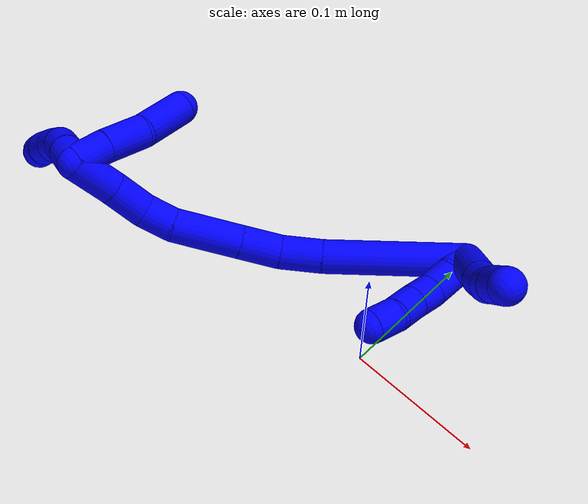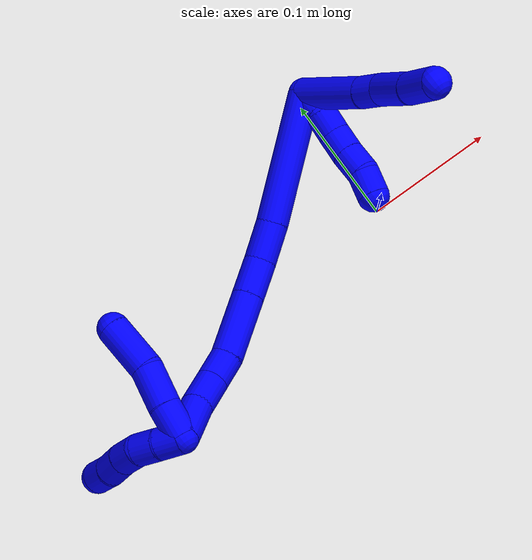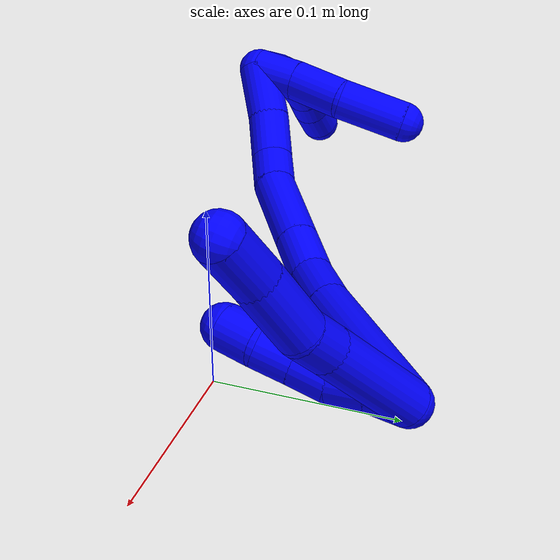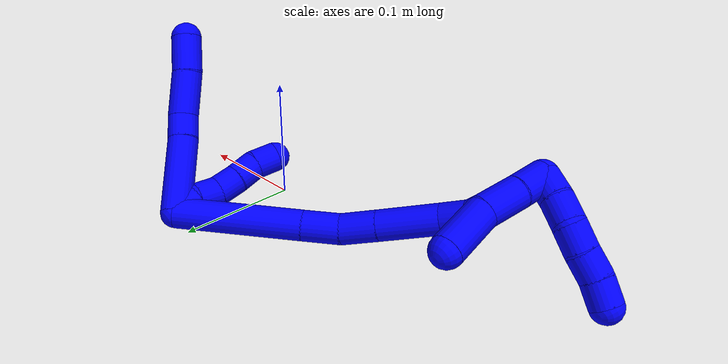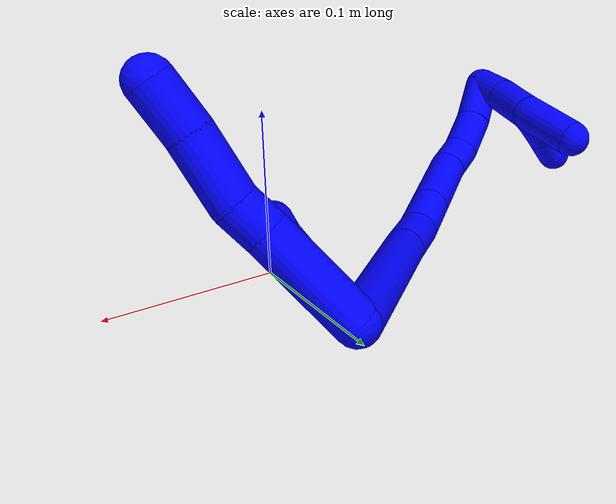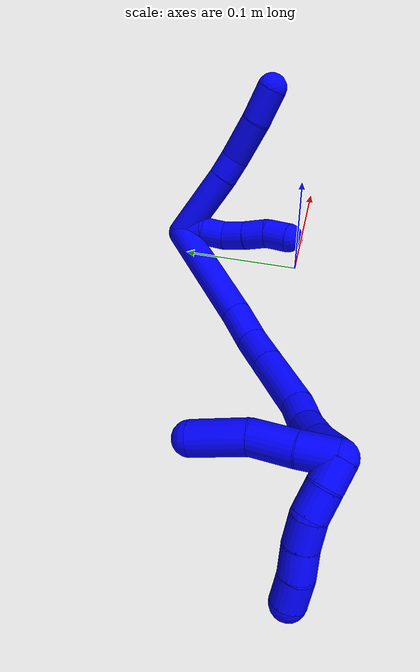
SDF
<sdf version="1.7">
 <world name="default">
  <model name="1">
   <static>0</static>
   <link name="1">
    <collision name="collision-cylinder-e_1_2_8">
     <pose>0.017224 -0.015923 -0.02046 2.48026 0.586411 1.44275</pose>
     <geometry><cylinder><radius>0.0125</radius><length>0.062251</length></cylinder></geometry>
     <surface>
      <friction><ode><mu>1.16</mu><mu2>1.16</mu2><slip1>0</slip1><slip2>0</slip2></ode></friction>
      <contact><ode><kp>1e+06</kp><kd>1</kd><max_vel>0</max_vel><min_depth>0.001</min_depth></ode></contact>
     </surface>
    </collision>
    <visual name="visual-cylinder-e_1_2_8">
     <pose>0.017224 -0.015923 -0.02046 2.48026 0.586411 1.44275</pose>
     <geometry><cylinder><radius>0.0125</radius><length>0.062251</length></cylinder></geometry>
     <material><ambient>0 0 1 1</ambient></material>
    </visual>
    <collision name="collision-cylinder-e_2_8_9">
     <pose>0.040623 -0.037073 -0.04688 2.42162 0.661681 1.47939</pose>
     <geometry><cylinder><radius>0.0125</radius><length>0.020097</length></cylinder></geometry>
     <surface>
      <friction><ode><mu>1.16</mu><mu2>1.16</mu2><slip1>0</slip1><slip2>0</slip2></ode></friction>
      <contact><ode><kp>1e+06</kp><kd>1</kd><max_vel>0</max_vel><min_depth>0.001</min_depth></ode></contact>
     </surface>
    </collision>
    <visual name="visual-cylinder-e_2_8_9">
     <pose>0.040623 -0.037073 -0.04688 2.42162 0.661681 1.47939</pose>
     <geometry><cylinder><radius>0.0125</radius><length>0.020097</length></cylinder></geometry>
     <material><ambient>0 0 1 1</ambient></material>
    </visual>
    <collision name="collision-cylinder-e_3_9_10">
     <pose>0.054578 -0.054988 -0.064205 2.30125 0.428535 0.906482</pose>
     <geometry><cylinder><radius>0.0125</radius><length>0.037453</length></cylinder></geometry>
     <surface>
      <friction><ode><mu>1.16</mu><mu2>1.16</mu2><slip1>0</slip1><slip2>0</slip2></ode></friction>
      <contact><ode><kp>1e+06</kp><kd>1</kd><max_vel>0</max_vel><min_depth>0.001</min_depth></ode></contact>
     </surface>
    </collision>
    <visual name="visual-cylinder-e_3_9_10">
     <pose>0.054578 -0.054988 -0.064205 2.30125 0.428535 0.906482</pose>
     <geometry><cylinder><radius>0.0125</radius><length>0.037453</length></cylinder></geometry>
     <material><ambient>0 0 1 1</ambient></material>
    </visual>
    <collision name="collision-cylinder-e_4_10_6">
     <pose>0.070152 -0.077727 -0.083708 2.25139 0.542261 1.05524</pose>
     <geometry><cylinder><radius>0.0125</radius><length>0.030199</length></cylinder></geometry>
     <surface>
      <friction><ode><mu>1.16</mu><mu2>1.16</mu2><slip1>0</slip1><slip2>0</slip2></ode></friction>
      <contact><ode><kp>1e+06</kp><kd>1</kd><max_vel>0</max_vel><min_depth>0.001</min_depth></ode></contact>
     </surface>
    </collision>
    <visual name="visual-cylinder-e_4_10_6">
     <pose>0.070152 -0.077727 -0.083708 2.25139 0.542261 1.05524</pose>
     <geometry><cylinder><radius>0.0125</radius><length>0.030199</length></cylinder></geometry>
     <material><ambient>0 0 1 1</ambient></material>
    </visual>
    <collision name="collision-cylinder-e_1_2_11">
     <pose>0.000467 1.9e-05 -0.009989 -3.13973 0.046678 -3.06166</pose>
     <geometry><cylinder><radius>0.0125</radius><length>0.02</length></cylinder></geometry>
     <surface>
      <friction><ode><mu>1.16</mu><mu2>1.16</mu2><slip1>0</slip1><slip2>0</slip2></ode></friction>
      <contact><ode><kp>1e+06</kp><kd>1</kd><max_vel>0</max_vel><min_depth>0.001</min_depth></ode></contact>
     </surface>
    </collision>
    <visual name="visual-cylinder-e_1_2_11">
     <pose>0.000467 1.9e-05 -0.009989 -3.13973 0.046678 -3.06166</pose>
     <geometry><cylinder><radius>0.0125</radius><length>0.02</length></cylinder></geometry>
     <material><ambient>0 0 1 1</ambient></material>
    </visual>
    <collision name="collision-cylinder-e_2_11_12">
     <pose>0.00012 0.002776 -0.029561 -2.8632 -0.081403 0.565758</pose>
     <geometry><cylinder><radius>0.0125</radius><length>0.02</length></cylinder></geometry>
     <surface>
      <friction><ode><mu>1.16</mu><mu2>1.16</mu2><slip1>0</slip1><slip2>0</slip2></ode></friction>
      <contact><ode><kp>1e+06</kp><kd>1</kd><max_vel>0</max_vel><min_depth>0.001</min_depth></ode></contact>
     </surface>
    </collision>
    <visual name="visual-cylinder-e_2_11_12">
     <pose>0.00012 0.002776 -0.029561 -2.8632 -0.081403 0.565758</pose>
     <geometry><cylinder><radius>0.0125</radius><length>0.02</length></cylinder></geometry>
     <material><ambient>0 0 1 1</ambient></material>
    </visual>
    <collision name="collision-cylinder-e_3_12_13">
     <pose>-0.001257 0.00519 -0.049123 3.109 -0.056398 -2.09361</pose>
     <geometry><cylinder><radius>0.0125</radius><length>0.02</length></cylinder></geometry>
     <surface>
      <friction><ode><mu>1.16</mu><mu2>1.16</mu2><slip1>0</slip1><slip2>0</slip2></ode></friction>
      <contact><ode><kp>1e+06</kp><kd>1</kd><max_vel>0</max_vel><min_depth>0.001</min_depth></ode></contact>
     </surface>
    </collision>
    <visual name="visual-cylinder-e_3_12_13">
     <pose>-0.001257 0.00519 -0.049123 3.109 -0.056398 -2.09361</pose>
     <geometry><cylinder><radius>0.0125</radius><length>0.02</length></cylinder></geometry>
     <material><ambient>0 0 1 1</ambient></material>
    </visual>
    <collision name="collision-cylinder-e_4_13_14">
     <pose>-0.00156 0.004227 -0.069078 3.07776 0.026017 0.77389</pose>
     <geometry><cylinder><radius>0.0125</radius><length>0.02</length></cylinder></geometry>
     <surface>
      <friction><ode><mu>1.16</mu><mu2>1.16</mu2><slip1>0</slip1><slip2>0</slip2></ode></friction>
      <contact><ode><kp>1e+06</kp><kd>1</kd><max_vel>0</max_vel><min_depth>0.001</min_depth></ode></contact>
     </surface>
    </collision>
    <visual name="visual-cylinder-e_4_13_14">
     <pose>-0.00156 0.004227 -0.069078 3.07776 0.026017 0.77389</pose>
     <geometry><cylinder><radius>0.0125</radius><length>0.02</length></cylinder></geometry>
     <material><ambient>0 0 1 1</ambient></material>
    </visual>
    <collision name="collision-cylinder-e_5_14_5">
     <pose>-0.003602 0.004286 -0.088761 -3.06998 -0.232297 2.54582</pose>
     <geometry><cylinder><radius>0.0125</radius><length>0.02</length></cylinder></geometry>
     <surface>
      <friction><ode><mu>1.16</mu><mu2>1.16</mu2><slip1>0</slip1><slip2>0</slip2></ode></friction>
      <contact><ode><kp>1e+06</kp><kd>1</kd><max_vel>0</max_vel><min_depth>0.001</min_depth></ode></contact>
     </surface>
    </collision>
    <visual name="visual-cylinder-e_5_14_5">
     <pose>-0.003602 0.004286 -0.088761 -3.06998 -0.232297 2.54582</pose>
     <geometry><cylinder><radius>0.0125</radius><length>0.02</length></cylinder></geometry>
     <material><ambient>0 0 1 1</ambient></material>
    </visual>
    <collision name="collision-cylinder-e_1_2_15">
     <pose>-0.040001 0.006552 -0.031593 -2.9371 -0.892038 2.71884</pose>
     <geometry><cylinder><radius>0.0125</radius><length>0.102783</length></cylinder></geometry>
     <surface>
      <friction><ode><mu>1.16</mu><mu2>1.16</mu2><slip1>0</slip1><slip2>0</slip2></ode></friction>
      <contact><ode><kp>1e+06</kp><kd>1</kd><max_vel>0</max_vel><min_depth>0.001</min_depth></ode></contact>
     </surface>
    </collision>
    <visual name="visual-cylinder-e_1_2_15">
     <pose>-0.040001 0.006552 -0.031593 -2.9371 -0.892038 2.71884</pose>
     <geometry><cylinder><radius>0.0125</radius><length>0.102783</length></cylinder></geometry>
     <material><ambient>0 0 1 1</ambient></material>
    </visual>
    <collision name="collision-cylinder-e_2_15_16">
     <pose>-0.092533 0.014156 -0.072145 -3.02467 -0.946836 2.91408</pose>
     <geometry><cylinder><radius>0.0125</radius><length>0.030881</length></cylinder></geometry>
     <surface>
      <friction><ode><mu>1.16</mu><mu2>1.16</mu2><slip1>0</slip1><slip2>0</slip2></ode></friction>
      <contact><ode><kp>1e+06</kp><kd>1</kd><max_vel>0</max_vel><min_depth>0.001</min_depth></ode></contact>
     </surface>
    </collision>
    <visual name="visual-cylinder-e_2_15_16">
     <pose>-0.092533 0.014156 -0.072145 -3.02467 -0.946836 2.91408</pose>
     <geometry><cylinder><radius>0.0125</radius><length>0.030881</length></cylinder></geometry>
     <material><ambient>0 0 1 1</ambient></material>
    </visual>
    <collision name="collision-cylinder-e_3_16_17">
     <pose>-0.116734 0.012856 -0.090287 2.89082 -0.888638 -2.62393</pose>
     <geometry><cylinder><radius>0.0125</radius><length>0.03007</length></cylinder></geometry>
     <surface>
      <friction><ode><mu>1.16</mu><mu2>1.16</mu2><slip1>0</slip1><slip2>0</slip2></ode></friction>
      <contact><ode><kp>1e+06</kp><kd>1</kd><max_vel>0</max_vel><min_depth>0.001</min_depth></ode></contact>
     </surface>
    </collision>
    <visual name="visual-cylinder-e_3_16_17">
     <pose>-0.116734 0.012856 -0.090287 2.89082 -0.888638 -2.62393</pose>
     <geometry><cylinder><radius>0.0125</radius><length>0.03007</length></cylinder></geometry>
     <material><ambient>0 0 1 1</ambient></material>
    </visual>
    <collision name="collision-cylinder-e_4_17_18">
     <pose>-0.147884 0.006396 -0.114829 2.88023 -0.886242 -2.60128</pose>
     <geometry><cylinder><radius>0.0125</radius><length>0.050288</length></cylinder></geometry>
     <surface>
      <friction><ode><mu>1.16</mu><mu2>1.16</mu2><slip1>0</slip1><slip2>0</slip2></ode></friction>
      <contact><ode><kp>1e+06</kp><kd>1</kd><max_vel>0</max_vel><min_depth>0.001</min_depth></ode></contact>
     </surface>
    </collision>
    <visual name="visual-cylinder-e_4_17_18">
     <pose>-0.147884 0.006396 -0.114829 2.88023 -0.886242 -2.60128</pose>
     <geometry><cylinder><radius>0.0125</radius><length>0.050288</length></cylinder></geometry>
     <material><ambient>0 0 1 1</ambient></material>
    </visual>
    <collision name="collision-cylinder-e_5_18_19">
     <pose>-0.176978 -0.001322 -0.135533 2.54764 -0.979974 -2.09979</pose>
     <geometry><cylinder><radius>0.0125</radius><length>0.023155</length></cylinder></geometry>
     <surface>
      <friction><ode><mu>1.16</mu><mu2>1.16</mu2><slip1>0</slip1><slip2>0</slip2></ode></friction>
      <contact><ode><kp>1e+06</kp><kd>1</kd><max_vel>0</max_vel><min_depth>0.001</min_depth></ode></contact>
     </surface>
    </collision>
    <visual name="visual-cylinder-e_5_18_19">
     <pose>-0.176978 -0.001322 -0.135533 2.54764 -0.979974 -2.09979</pose>
     <geometry><cylinder><radius>0.0125</radius><length>0.023155</length></cylinder></geometry>
     <material><ambient>0 0 1 1</ambient></material>
    </visual>
    <collision name="collision-cylinder-e_6_19_20">
     <pose>-0.195944 -0.013294 -0.147816 2.26331 -0.710614 -1.33714</pose>
     <geometry><cylinder><radius>0.0125</radius><length>0.028672</length></cylinder></geometry>
     <surface>
      <friction><ode><mu>1.16</mu><mu2>1.16</mu2><slip1>0</slip1><slip2>0</slip2></ode></friction>
      <contact><ode><kp>1e+06</kp><kd>1</kd><max_vel>0</max_vel><min_depth>0.001</min_depth></ode></contact>
     </surface>
    </collision>
    <visual name="visual-cylinder-e_6_19_20">
     <pose>-0.195944 -0.013294 -0.147816 2.26331 -0.710614 -1.33714</pose>
     <geometry><cylinder><radius>0.0125</radius><length>0.028672</length></cylinder></geometry>
     <material><ambient>0 0 1 1</ambient></material>
    </visual>
    <collision name="collision-cylinder-e_7_20_1">
     <pose>-0.214786 -0.032113 -0.164354 2.31354 -0.589336 -1.20888</pose>
     <geometry><cylinder><radius>0.0125</radius><length>0.034151</length></cylinder></geometry>
     <surface>
      <friction><ode><mu>1.16</mu><mu2>1.16</mu2><slip1>0</slip1><slip2>0</slip2></ode></friction>
      <contact><ode><kp>1e+06</kp><kd>1</kd><max_vel>0</max_vel><min_depth>0.001</min_depth></ode></contact>
     </surface>
    </collision>
    <visual name="visual-cylinder-e_7_20_1">
     <pose>-0.214786 -0.032113 -0.164354 2.31354 -0.589336 -1.20888</pose>
     <geometry><cylinder><radius>0.0125</radius><length>0.034151</length></cylinder></geometry>
     <material><ambient>0 0 1 1</ambient></material>
    </visual>
    <collision name="collision-cylinder-e_1_1_21">
     <pose>-0.23303 -0.040109 -0.169793 -0.534054 -1.06624 0.320104</pose>
     <geometry><cylinder><radius>0.0125</radius><length>0.02</length></cylinder></geometry>
     <surface>
      <friction><ode><mu>1.16</mu><mu2>1.16</mu2><slip1>0</slip1><slip2>0</slip2></ode></friction>
      <contact><ode><kp>1e+06</kp><kd>1</kd><max_vel>0</max_vel><min_depth>0.001</min_depth></ode></contact>
     </surface>
    </collision>
    <visual name="visual-cylinder-e_1_1_21">
     <pose>-0.23303 -0.040109 -0.169793 -0.534054 -1.06624 0.320104</pose>
     <geometry><cylinder><radius>0.0125</radius><length>0.02</length></cylinder></geometry>
     <material><ambient>0 0 1 1</ambient></material>
    </visual>
    <collision name="collision-cylinder-e_2_21_22">
     <pose>-0.249985 -0.033951 -0.161263 -0.702306 -0.961472 0.377571</pose>
     <geometry><cylinder><radius>0.0125</radius><length>0.02</length></cylinder></geometry>
     <surface>
      <friction><ode><mu>1.16</mu><mu2>1.16</mu2><slip1>0</slip1><slip2>0</slip2></ode></friction>
      <contact><ode><kp>1e+06</kp><kd>1</kd><max_vel>0</max_vel><min_depth>0.001</min_depth></ode></contact>
     </surface>
    </collision>
    <visual name="visual-cylinder-e_2_21_22">
     <pose>-0.249985 -0.033951 -0.161263 -0.702306 -0.961472 0.377571</pose>
     <geometry><cylinder><radius>0.0125</radius><length>0.02</length></cylinder></geometry>
     <material><ambient>0 0 1 1</ambient></material>
    </visual>
    <collision name="collision-cylinder-e_3_22_23">
     <pose>-0.265518 -0.024067 -0.154075 -1.14324 -0.823216 0.547517</pose>
     <geometry><cylinder><radius>0.0125</radius><length>0.02</length></cylinder></geometry>
     <surface>
      <friction><ode><mu>1.16</mu><mu2>1.16</mu2><slip1>0</slip1><slip2>0</slip2></ode></friction>
      <contact><ode><kp>1e+06</kp><kd>1</kd><max_vel>0</max_vel><min_depth>0.001</min_depth></ode></contact>
     </surface>
    </collision>
    <visual name="visual-cylinder-e_3_22_23">
     <pose>-0.265518 -0.024067 -0.154075 -1.14324 -0.823216 0.547517</pose>
     <geometry><cylinder><radius>0.0125</radius><length>0.02</length></cylinder></geometry>
     <material><ambient>0 0 1 1</ambient></material>
    </visual>
    <collision name="collision-cylinder-e_4_23_24">
     <pose>-0.280194 -0.011301 -0.149584 -1.32197 -0.824542 0.655668</pose>
     <geometry><cylinder><radius>0.0125</radius><length>0.02</length></cylinder></geometry>
     <surface>
      <friction><ode><mu>1.16</mu><mu2>1.16</mu2><slip1>0</slip1><slip2>0</slip2></ode></friction>
      <contact><ode><kp>1e+06</kp><kd>1</kd><max_vel>0</max_vel><min_depth>0.001</min_depth></ode></contact>
     </surface>
    </collision>
    <visual name="visual-cylinder-e_4_23_24">
     <pose>-0.280194 -0.011301 -0.149584 -1.32197 -0.824542 0.655668</pose>
     <geometry><cylinder><radius>0.0125</radius><length>0.02</length></cylinder></geometry>
     <material><ambient>0 0 1 1</ambient></material>
    </visual>
    <collision name="collision-cylinder-e_5_24_4">
     <pose>-0.294081 0.00216 -0.144777 -1.1433 -0.713439 0.470585</pose>
     <geometry><cylinder><radius>0.0125</radius><length>0.02</length></cylinder></geometry>
     <surface>
      <friction><ode><mu>1.16</mu><mu2>1.16</mu2><slip1>0</slip1><slip2>0</slip2></ode></friction>
      <contact><ode><kp>1e+06</kp><kd>1</kd><max_vel>0</max_vel><min_depth>0.001</min_depth></ode></contact>
     </surface>
    </collision>
    <visual name="visual-cylinder-e_5_24_4">
     <pose>-0.294081 0.00216 -0.144777 -1.1433 -0.713439 0.470585</pose>
     <geometry><cylinder><radius>0.0125</radius><length>0.02</length></cylinder></geometry>
     <material><ambient>0 0 1 1</ambient></material>
    </visual>
    <collision name="collision-cylinder-e_1_1_25">
     <pose>-0.222964 -0.043929 -0.160852 0.103368 0.099318 0.005142</pose>
     <geometry><cylinder><radius>0.0125</radius><length>0.026475</length></cylinder></geometry>
     <surface>
      <friction><ode><mu>1.16</mu><mu2>1.16</mu2><slip1>0</slip1><slip2>0</slip2></ode></friction>
      <contact><ode><kp>1e+06</kp><kd>1</kd><max_vel>0</max_vel><min_depth>0.001</min_depth></ode></contact>
     </surface>
    </collision>
    <visual name="visual-cylinder-e_1_1_25">
     <pose>-0.222964 -0.043929 -0.160852 0.103368 0.099318 0.005142</pose>
     <geometry><cylinder><radius>0.0125</radius><length>0.026475</length></cylinder></geometry>
     <material><ambient>0 0 1 1</ambient></material>
    </visual>
    <collision name="collision-cylinder-e_2_25_26">
     <pose>-0.218836 -0.046042 -0.13191 0.047601 0.175721 0.004194</pose>
     <geometry><cylinder><radius>0.0125</radius><length>0.032211</length></cylinder></geometry>
     <surface>
      <friction><ode><mu>1.16</mu><mu2>1.16</mu2><slip1>0</slip1><slip2>0</slip2></ode></friction>
      <contact><ode><kp>1e+06</kp><kd>1</kd><max_vel>0</max_vel><min_depth>0.001</min_depth></ode></contact>
     </surface>
    </collision>
    <visual name="visual-cylinder-e_2_25_26">
     <pose>-0.218836 -0.046042 -0.13191 0.047601 0.175721 0.004194</pose>
     <geometry><cylinder><radius>0.0125</radius><length>0.032211</length></cylinder></geometry>
     <material><ambient>0 0 1 1</ambient></material>
    </visual>
    <collision name="collision-cylinder-e_3_26_3">
     <pose>-0.21771 -0.046513 -0.095485 -0.013802 -0.081884 0.000565</pose>
     <geometry><cylinder><radius>0.0125</radius><length>0.041314</length></cylinder></geometry>
     <surface>
      <friction><ode><mu>1.16</mu><mu2>1.16</mu2><slip1>0</slip1><slip2>0</slip2></ode></friction>
      <contact><ode><kp>1e+06</kp><kd>1</kd><max_vel>0</max_vel><min_depth>0.001</min_depth></ode></contact>
     </surface>
    </collision>
    <visual name="visual-cylinder-e_3_26_3">
     <pose>-0.21771 -0.046513 -0.095485 -0.013802 -0.081884 0.000565</pose>
     <geometry><cylinder><radius>0.0125</radius><length>0.041314</length></cylinder></geometry>
     <material><ambient>0 0 1 1</ambient></material>
    </visual>
    <collision name="collision-sphere-3">
     <pose>-0.219399 -0.046229 -0.074899 0 -0 0</pose>
     <geometry><sphere><radius>0.0125</radius></sphere></geometry>
     <surface>
      <friction><ode><mu>1.16</mu><mu2>1.16</mu2><slip1>0</slip1><slip2>0</slip2></ode></friction>
      <contact><ode><kp>1e+06</kp><kd>1</kd><max_vel>0</max_vel><min_depth>0.001</min_depth></ode></contact>
     </surface>
    </collision>
    <visual name="visual-sphere-3">
     <pose>-0.219399 -0.046229 -0.074899 0 -0 0</pose>
     <geometry><sphere><radius>0.0125</radius></sphere></geometry>
     <material><ambient>0 0 1 1</ambient></material>
    </visual>
    <collision name="collision-sphere-26">
     <pose>-0.21602 -0.046797 -0.116071 0 -0 0</pose>
     <geometry><sphere><radius>0.0125</radius></sphere></geometry>
     <surface>
      <friction><ode><mu>1.16</mu><mu2>1.16</mu2><slip1>0</slip1><slip2>0</slip2></ode></friction>
      <contact><ode><kp>1e+06</kp><kd>1</kd><max_vel>0</max_vel><min_depth>0.001</min_depth></ode></contact>
     </surface>
    </collision>
    <visual name="visual-sphere-26">
     <pose>-0.21602 -0.046797 -0.116071 0 -0 0</pose>
     <geometry><sphere><radius>0.0125</radius></sphere></geometry>
     <material><ambient>0 0 1 1</ambient></material>
    </visual>
    <collision name="collision-sphere-25">
     <pose>-0.221651 -0.045288 -0.14775 0 -0 0</pose>
     <geometry><sphere><radius>0.0125</radius></sphere></geometry>
     <surface>
      <friction><ode><mu>1.16</mu><mu2>1.16</mu2><slip1>0</slip1><slip2>0</slip2></ode></friction>
      <contact><ode><kp>1e+06</kp><kd>1</kd><max_vel>0</max_vel><min_depth>0.001</min_depth></ode></contact>
     </surface>
    </collision>
    <visual name="visual-sphere-25">
     <pose>-0.221651 -0.045288 -0.14775 0 -0 0</pose>
     <geometry><sphere><radius>0.0125</radius></sphere></geometry>
     <material><ambient>0 0 1 1</ambient></material>
    </visual>
    <collision name="collision-sphere-4">
     <pose>-0.300625 0.00904 -0.141643 0 -0 0</pose>
     <geometry><sphere><radius>0.0125</radius></sphere></geometry>
     <surface>
      <friction><ode><mu>1.16</mu><mu2>1.16</mu2><slip1>0</slip1><slip2>0</slip2></ode></friction>
      <contact><ode><kp>1e+06</kp><kd>1</kd><max_vel>0</max_vel><min_depth>0.001</min_depth></ode></contact>
     </surface>
    </collision>
    <visual name="visual-sphere-4">
     <pose>-0.300625 0.00904 -0.141643 0 -0 0</pose>
     <geometry><sphere><radius>0.0125</radius></sphere></geometry>
     <material><ambient>0 0 1 1</ambient></material>
    </visual>
    <collision name="collision-sphere-24">
     <pose>-0.287536 -0.004721 -0.147912 0 -0 0</pose>
     <geometry><sphere><radius>0.0125</radius></sphere></geometry>
     <surface>
      <friction><ode><mu>1.16</mu><mu2>1.16</mu2><slip1>0</slip1><slip2>0</slip2></ode></friction>
      <contact><ode><kp>1e+06</kp><kd>1</kd><max_vel>0</max_vel><min_depth>0.001</min_depth></ode></contact>
     </surface>
    </collision>
    <visual name="visual-sphere-24">
     <pose>-0.287536 -0.004721 -0.147912 0 -0 0</pose>
     <geometry><sphere><radius>0.0125</radius></sphere></geometry>
     <material><ambient>0 0 1 1</ambient></material>
    </visual>
    <collision name="collision-sphere-23">
     <pose>-0.272852 -0.017881 -0.151256 0 -0 0</pose>
     <geometry><sphere><radius>0.0125</radius></sphere></geometry>
     <surface>
      <friction><ode><mu>1.16</mu><mu2>1.16</mu2><slip1>0</slip1><slip2>0</slip2></ode></friction>
      <contact><ode><kp>1e+06</kp><kd>1</kd><max_vel>0</max_vel><min_depth>0.001</min_depth></ode></contact>
     </surface>
    </collision>
    <visual name="visual-sphere-23">
     <pose>-0.272852 -0.017881 -0.151256 0 -0 0</pose>
     <geometry><sphere><radius>0.0125</radius></sphere></geometry>
     <material><ambient>0 0 1 1</ambient></material>
    </visual>
    <collision name="collision-sphere-22">
     <pose>-0.258185 -0.030254 -0.156894 0 -0 0</pose>
     <geometry><sphere><radius>0.0125</radius></sphere></geometry>
     <surface>
      <friction><ode><mu>1.16</mu><mu2>1.16</mu2><slip1>0</slip1><slip2>0</slip2></ode></friction>
      <contact><ode><kp>1e+06</kp><kd>1</kd><max_vel>0</max_vel><min_depth>0.001</min_depth></ode></contact>
     </surface>
    </collision>
    <visual name="visual-sphere-22">
     <pose>-0.258185 -0.030254 -0.156894 0 -0 0</pose>
     <geometry><sphere><radius>0.0125</radius></sphere></geometry>
     <material><ambient>0 0 1 1</ambient></material>
    </visual>
    <collision name="collision-sphere-21">
     <pose>-0.241784 -0.037648 -0.165632 0 -0 0</pose>
     <geometry><sphere><radius>0.0125</radius></sphere></geometry>
     <surface>
      <friction><ode><mu>1.16</mu><mu2>1.16</mu2><slip1>0</slip1><slip2>0</slip2></ode></friction>
      <contact><ode><kp>1e+06</kp><kd>1</kd><max_vel>0</max_vel><min_depth>0.001</min_depth></ode></contact>
     </surface>
    </collision>
    <visual name="visual-sphere-21">
     <pose>-0.241784 -0.037648 -0.165632 0 -0 0</pose>
     <geometry><sphere><radius>0.0125</radius></sphere></geometry>
     <material><ambient>0 0 1 1</ambient></material>
    </visual>
    <collision name="collision-sphere-1">
     <pose>-0.224276 -0.04257 -0.173954 0 -0 0</pose>
     <geometry><sphere><radius>0.0125</radius></sphere></geometry>
     <surface>
      <friction><ode><mu>1.16</mu><mu2>1.16</mu2><slip1>0</slip1><slip2>0</slip2></ode></friction>
      <contact><ode><kp>1e+06</kp><kd>1</kd><max_vel>0</max_vel><min_depth>0.001</min_depth></ode></contact>
     </surface>
    </collision>
    <visual name="visual-sphere-1">
     <pose>-0.224276 -0.04257 -0.173954 0 -0 0</pose>
     <geometry><sphere><radius>0.0125</radius></sphere></geometry>
     <material><ambient>0 0 1 1</ambient></material>
    </visual>
    <collision name="collision-sphere-11">
     <pose>0.000933 3.7e-05 -0.019978 0 -0 0</pose>
     <geometry><sphere><radius>0.0125</radius></sphere></geometry>
     <surface>
      <friction><ode><mu>1.16</mu><mu2>1.16</mu2><slip1>0</slip1><slip2>0</slip2></ode></friction>
      <contact><ode><kp>1e+06</kp><kd>1</kd><max_vel>0</max_vel><min_depth>0.001</min_depth></ode></contact>
     </surface>
    </collision>
    <visual name="visual-sphere-11">
     <pose>0.000933 3.7e-05 -0.019978 0 -0 0</pose>
     <geometry><sphere><radius>0.0125</radius></sphere></geometry>
     <material><ambient>0 0 1 1</ambient></material>
    </visual>
    <collision name="collision-sphere-6">
     <pose>0.077945 -0.087779 -0.091846 0 -0 0</pose>
     <geometry><sphere><radius>0.0125</radius></sphere></geometry>
     <surface>
      <friction><ode><mu>1.16</mu><mu2>1.16</mu2><slip1>0</slip1><slip2>0</slip2></ode></friction>
      <contact><ode><kp>1e+06</kp><kd>1</kd><max_vel>0</max_vel><min_depth>0.001</min_depth></ode></contact>
     </surface>
    </collision>
    <visual name="visual-sphere-6">
     <pose>0.077945 -0.087779 -0.091846 0 -0 0</pose>
     <geometry><sphere><radius>0.0125</radius></sphere></geometry>
     <material><ambient>0 0 1 1</ambient></material>
    </visual>
    <collision name="collision-sphere-10">
     <pose>0.06236 -0.067675 -0.07557 0 -0 0</pose>
     <geometry><sphere><radius>0.0125</radius></sphere></geometry>
     <surface>
      <friction><ode><mu>1.16</mu><mu2>1.16</mu2><slip1>0</slip1><slip2>0</slip2></ode></friction>
      <contact><ode><kp>1e+06</kp><kd>1</kd><max_vel>0</max_vel><min_depth>0.001</min_depth></ode></contact>
     </surface>
    </collision>
    <visual name="visual-sphere-10">
     <pose>0.06236 -0.067675 -0.07557 0 -0 0</pose>
     <geometry><sphere><radius>0.0125</radius></sphere></geometry>
     <material><ambient>0 0 1 1</ambient></material>
    </visual>
    <collision name="collision-sphere-9">
     <pose>0.046797 -0.0423 -0.05284 0 -0 0</pose>
     <geometry><sphere><radius>0.0125</radius></sphere></geometry>
     <surface>
      <friction><ode><mu>1.16</mu><mu2>1.16</mu2><slip1>0</slip1><slip2>0</slip2></ode></friction>
      <contact><ode><kp>1e+06</kp><kd>1</kd><max_vel>0</max_vel><min_depth>0.001</min_depth></ode></contact>
     </surface>
    </collision>
    <visual name="visual-sphere-9">
     <pose>0.046797 -0.0423 -0.05284 0 -0 0</pose>
     <geometry><sphere><radius>0.0125</radius></sphere></geometry>
     <material><ambient>0 0 1 1</ambient></material>
    </visual>
    <collision name="collision-sphere-2">
     <geometry><sphere><radius>0.0125</radius></sphere></geometry>
     <surface>
      <friction><ode><mu>1.16</mu><mu2>1.16</mu2><slip1>0</slip1><slip2>0</slip2></ode></friction>
      <contact><ode><kp>1e+06</kp><kd>1</kd><max_vel>0</max_vel><min_depth>0.001</min_depth></ode></contact>
     </surface>
    </collision>
    <visual name="visual-sphere-2">
     <geometry><sphere><radius>0.0125</radius></sphere></geometry>
     <material><ambient>0 0 1 1</ambient></material>
    </visual>
    <collision name="collision-sphere-19">
     <pose>-0.186592 -0.004931 -0.140878 0 -0 0</pose>
     <geometry><sphere><radius>0.0125</radius></sphere></geometry>
     <surface>
      <friction><ode><mu>1.16</mu><mu2>1.16</mu2><slip1>0</slip1><slip2>0</slip2></ode></friction>
      <contact><ode><kp>1e+06</kp><kd>1</kd><max_vel>0</max_vel><min_depth>0.001</min_depth></ode></contact>
     </surface>
    </collision>
    <visual name="visual-sphere-19">
     <pose>-0.186592 -0.004931 -0.140878 0 -0 0</pose>
     <geometry><sphere><radius>0.0125</radius></sphere></geometry>
     <material><ambient>0 0 1 1</ambient></material>
    </visual>
    <collision name="collision-sphere-8">
     <pose>0.034448 -0.031845 -0.04092 0 -0 0</pose>
     <geometry><sphere><radius>0.0125</radius></sphere></geometry>
     <surface>
      <friction><ode><mu>1.16</mu><mu2>1.16</mu2><slip1>0</slip1><slip2>0</slip2></ode></friction>
      <contact><ode><kp>1e+06</kp><kd>1</kd><max_vel>0</max_vel><min_depth>0.001</min_depth></ode></contact>
     </surface>
    </collision>
    <visual name="visual-sphere-8">
     <pose>0.034448 -0.031845 -0.04092 0 -0 0</pose>
     <geometry><sphere><radius>0.0125</radius></sphere></geometry>
     <material><ambient>0 0 1 1</ambient></material>
    </visual>
    <collision name="collision-sphere-12">
     <pose>-0.000693 0.005515 -0.039144 0 -0 0</pose>
     <geometry><sphere><radius>0.0125</radius></sphere></geometry>
     <surface>
      <friction><ode><mu>1.16</mu><mu2>1.16</mu2><slip1>0</slip1><slip2>0</slip2></ode></friction>
      <contact><ode><kp>1e+06</kp><kd>1</kd><max_vel>0</max_vel><min_depth>0.001</min_depth></ode></contact>
     </surface>
    </collision>
    <visual name="visual-sphere-12">
     <pose>-0.000693 0.005515 -0.039144 0 -0 0</pose>
     <geometry><sphere><radius>0.0125</radius></sphere></geometry>
     <material><ambient>0 0 1 1</ambient></material>
    </visual>
    <collision name="collision-sphere-13">
     <pose>-0.00182 0.004865 -0.059102 0 -0 0</pose>
     <geometry><sphere><radius>0.0125</radius></sphere></geometry>
     <surface>
      <friction><ode><mu>1.16</mu><mu2>1.16</mu2><slip1>0</slip1><slip2>0</slip2></ode></friction>
      <contact><ode><kp>1e+06</kp><kd>1</kd><max_vel>0</max_vel><min_depth>0.001</min_depth></ode></contact>
     </surface>
    </collision>
    <visual name="visual-sphere-13">
     <pose>-0.00182 0.004865 -0.059102 0 -0 0</pose>
     <geometry><sphere><radius>0.0125</radius></sphere></geometry>
     <material><ambient>0 0 1 1</ambient></material>
    </visual>
    <collision name="collision-sphere-14">
     <pose>-0.0013 0.003589 -0.079055 0 -0 0</pose>
     <geometry><sphere><radius>0.0125</radius></sphere></geometry>
     <surface>
      <friction><ode><mu>1.16</mu><mu2>1.16</mu2><slip1>0</slip1><slip2>0</slip2></ode></friction>
      <contact><ode><kp>1e+06</kp><kd>1</kd><max_vel>0</max_vel><min_depth>0.001</min_depth></ode></contact>
     </surface>
    </collision>
    <visual name="visual-sphere-14">
     <pose>-0.0013 0.003589 -0.079055 0 -0 0</pose>
     <geometry><sphere><radius>0.0125</radius></sphere></geometry>
     <material><ambient>0 0 1 1</ambient></material>
    </visual>
    <collision name="collision-sphere-5">
     <pose>-0.005904 0.004982 -0.098467 0 -0 0</pose>
     <geometry><sphere><radius>0.0125</radius></sphere></geometry>
     <surface>
      <friction><ode><mu>1.16</mu><mu2>1.16</mu2><slip1>0</slip1><slip2>0</slip2></ode></friction>
      <contact><ode><kp>1e+06</kp><kd>1</kd><max_vel>0</max_vel><min_depth>0.001</min_depth></ode></contact>
     </surface>
    </collision>
    <visual name="visual-sphere-5">
     <pose>-0.005904 0.004982 -0.098467 0 -0 0</pose>
     <geometry><sphere><radius>0.0125</radius></sphere></geometry>
     <material><ambient>0 0 1 1</ambient></material>
    </visual>
    <collision name="collision-sphere-15">
     <pose>-0.080001 0.013104 -0.063185 0 -0 0</pose>
     <geometry><sphere><radius>0.0125</radius></sphere></geometry>
     <surface>
      <friction><ode><mu>1.16</mu><mu2>1.16</mu2><slip1>0</slip1><slip2>0</slip2></ode></friction>
      <contact><ode><kp>1e+06</kp><kd>1</kd><max_vel>0</max_vel><min_depth>0.001</min_depth></ode></contact>
     </surface>
    </collision>
    <visual name="visual-sphere-15">
     <pose>-0.080001 0.013104 -0.063185 0 -0 0</pose>
     <geometry><sphere><radius>0.0125</radius></sphere></geometry>
     <material><ambient>0 0 1 1</ambient></material>
    </visual>
    <collision name="collision-sphere-16">
     <pose>-0.105064 0.015209 -0.081105 0 -0 0</pose>
     <geometry><sphere><radius>0.0125</radius></sphere></geometry>
     <surface>
      <friction><ode><mu>1.16</mu><mu2>1.16</mu2><slip1>0</slip1><slip2>0</slip2></ode></friction>
      <contact><ode><kp>1e+06</kp><kd>1</kd><max_vel>0</max_vel><min_depth>0.001</min_depth></ode></contact>
     </surface>
    </collision>
    <visual name="visual-sphere-16">
     <pose>-0.105064 0.015209 -0.081105 0 -0 0</pose>
     <geometry><sphere><radius>0.0125</radius></sphere></geometry>
     <material><ambient>0 0 1 1</ambient></material>
    </visual>
    <collision name="collision-sphere-17">
     <pose>-0.128405 0.010504 -0.09947 0 -0 0</pose>
     <geometry><sphere><radius>0.0125</radius></sphere></geometry>
     <surface>
      <friction><ode><mu>1.16</mu><mu2>1.16</mu2><slip1>0</slip1><slip2>0</slip2></ode></friction>
      <contact><ode><kp>1e+06</kp><kd>1</kd><max_vel>0</max_vel><min_depth>0.001</min_depth></ode></contact>
     </surface>
    </collision>
    <visual name="visual-sphere-17">
     <pose>-0.128405 0.010504 -0.09947 0 -0 0</pose>
     <geometry><sphere><radius>0.0125</radius></sphere></geometry>
     <material><ambient>0 0 1 1</ambient></material>
    </visual>
    <collision name="collision-sphere-18">
     <pose>-0.167363 0.002287 -0.130189 0 -0 0</pose>
     <geometry><sphere><radius>0.0125</radius></sphere></geometry>
     <surface>
      <friction><ode><mu>1.16</mu><mu2>1.16</mu2><slip1>0</slip1><slip2>0</slip2></ode></friction>
      <contact><ode><kp>1e+06</kp><kd>1</kd><max_vel>0</max_vel><min_depth>0.001</min_depth></ode></contact>
     </surface>
    </collision>
    <visual name="visual-sphere-18">
     <pose>-0.167363 0.002287 -0.130189 0 -0 0</pose>
     <geometry><sphere><radius>0.0125</radius></sphere></geometry>
     <material><ambient>0 0 1 1</ambient></material>
    </visual>
    <collision name="collision-sphere-20">
     <pose>-0.205295 -0.021657 -0.154753 0 -0 0</pose>
     <geometry><sphere><radius>0.0125</radius></sphere></geometry>
     <surface>
      <friction><ode><mu>1.16</mu><mu2>1.16</mu2><slip1>0</slip1><slip2>0</slip2></ode></friction>
      <contact><ode><kp>1e+06</kp><kd>1</kd><max_vel>0</max_vel><min_depth>0.001</min_depth></ode></contact>
     </surface>
    </collision>
    <visual name="visual-sphere-20">
     <pose>-0.205295 -0.021657 -0.154753 0 -0 0</pose>
     <geometry><sphere><radius>0.0125</radius></sphere></geometry>
     <material><ambient>0 0 1 1</ambient></material>
    </visual>
    <inertial>
     <pose>-0.103247 -0.016288 -0.089433 0 -0 0</pose>
     <mass>0.75</mass>
     <inertia>
      <ixx>-1.4e-05</ixx>
      <ixy>0</ixy>
      <ixz>0</ixz>
      <iyy>0.000175</iyy>
      <iyz>0</iyz>
      <izz>7.5e-05</izz>
     </inertia>
    </inertial>
   </link>
   <pose>0.006929 0.104976 0.017462 -1.81926 -0.106275 0.021463</pose>
  </model>
 </world>
</sdf>
